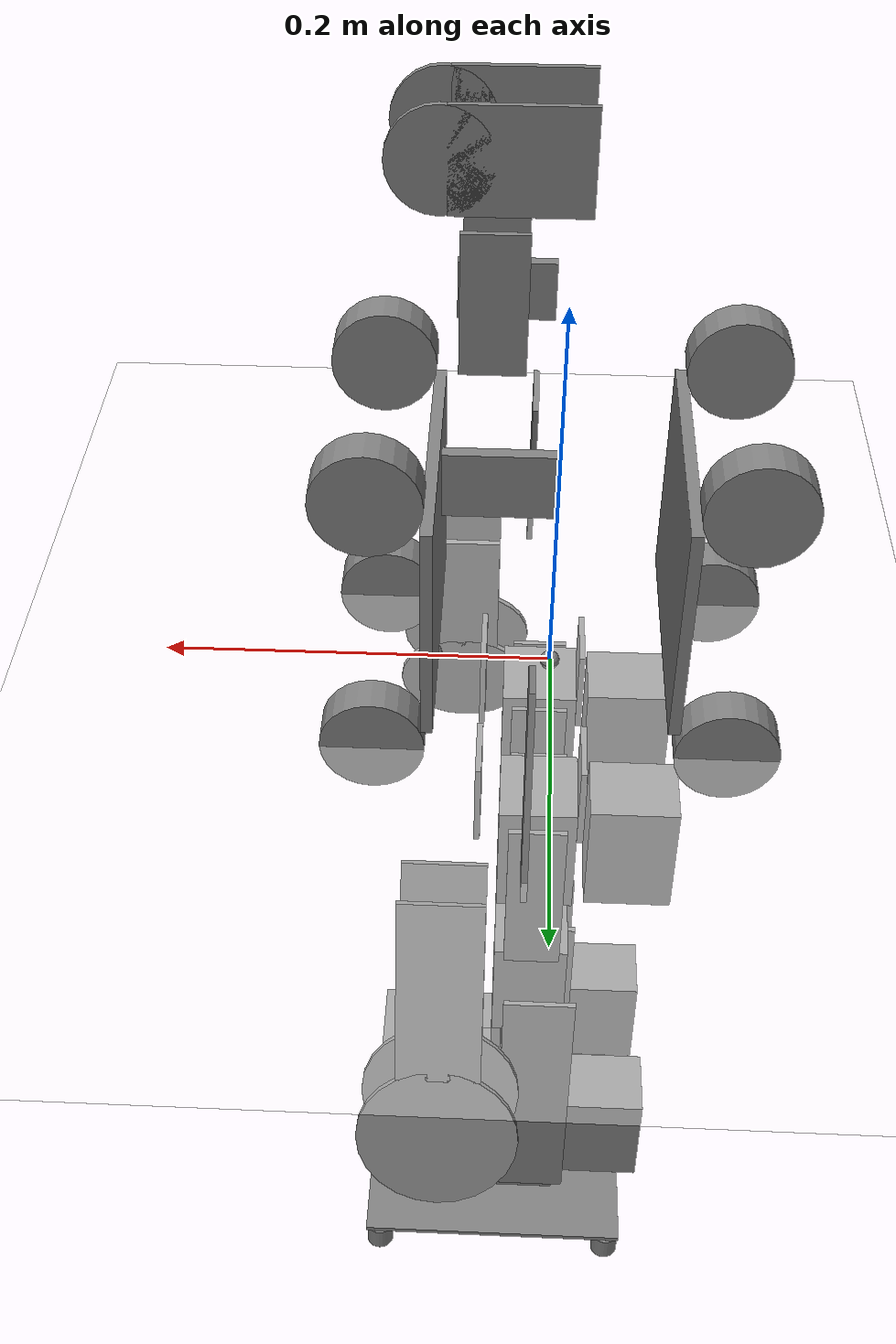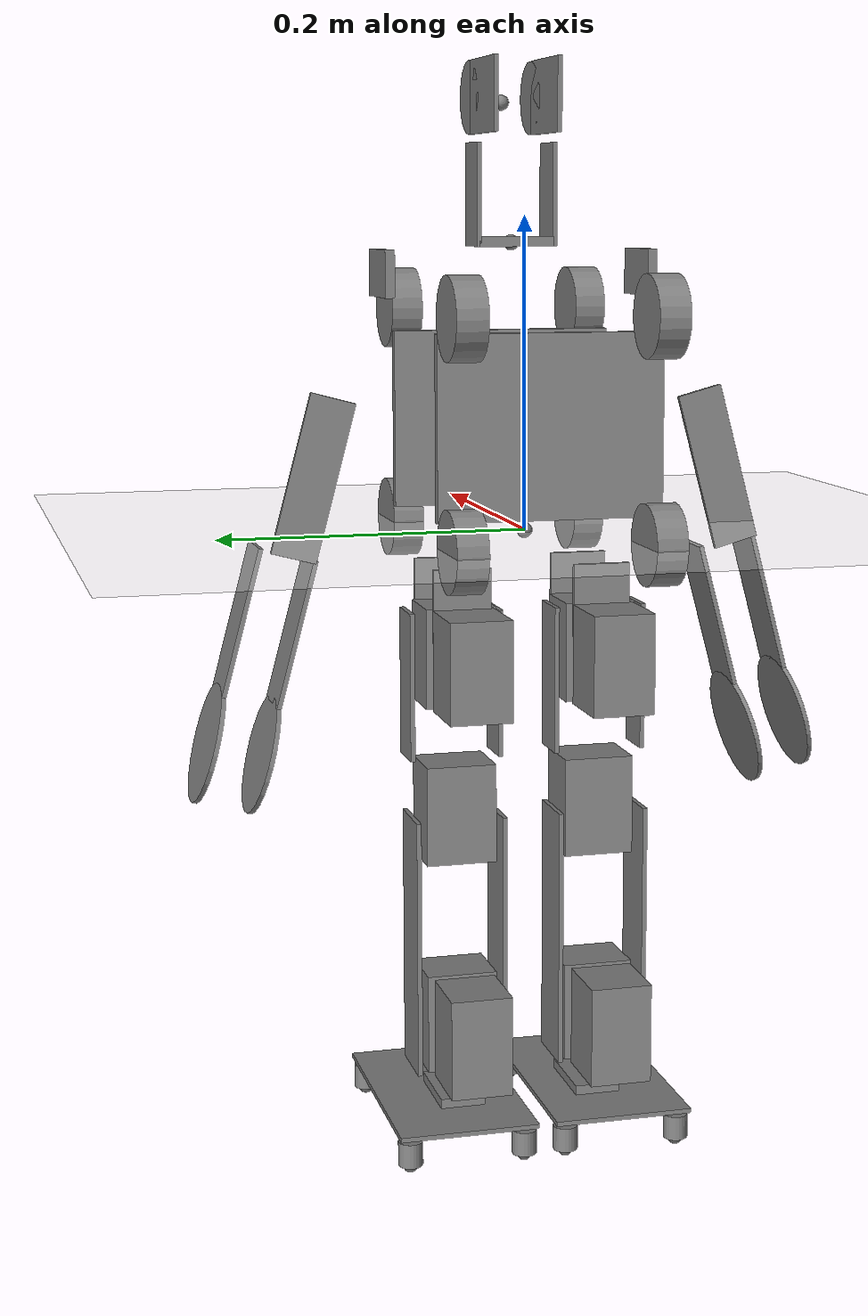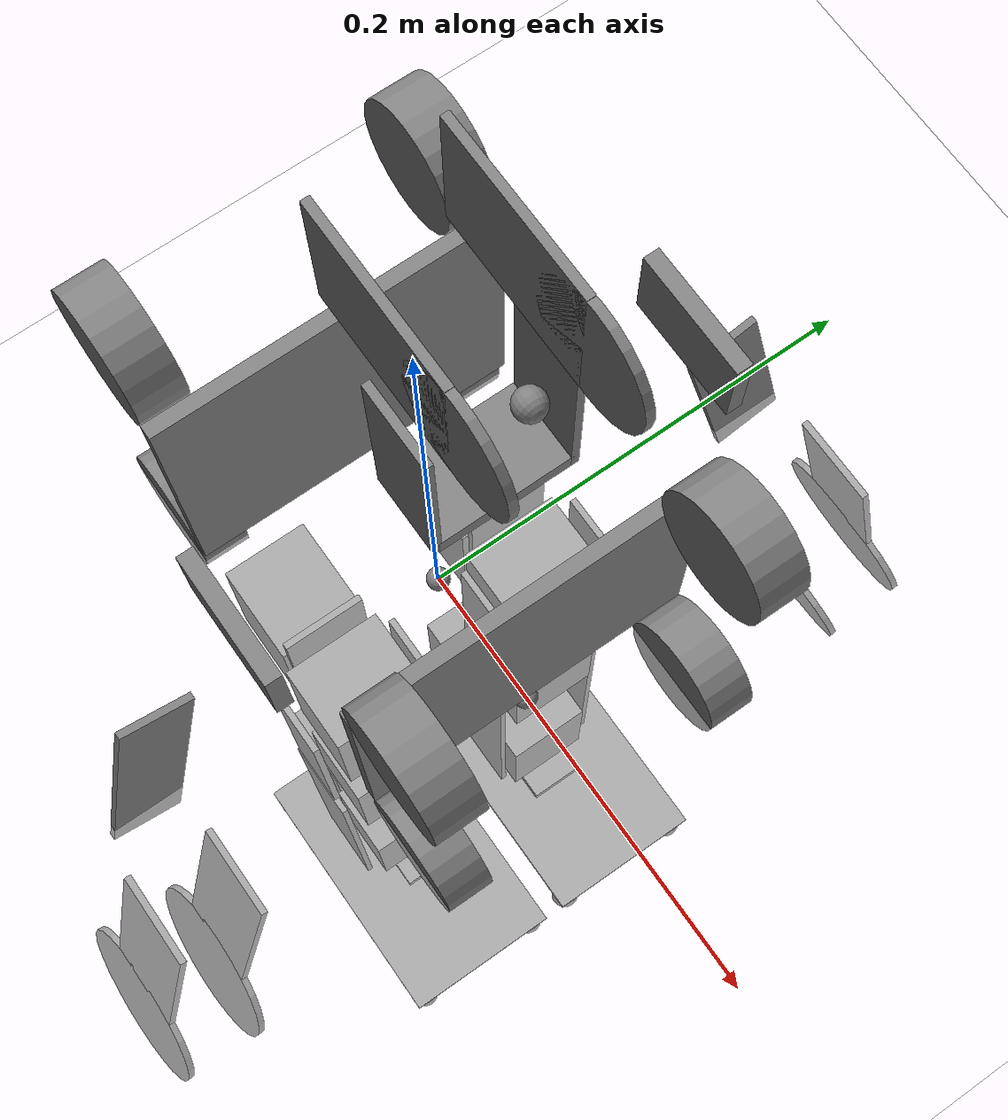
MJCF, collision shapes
<mujoco model="sigmaban humanoid feetonly flat terrain scene">
  <include file="sigmaban.xml"/>

  <statistic center="0 0 0.1" extent="0.8" meansize="0.04"/>

  <visual>
    <headlight diffuse=".8 .8 .8" ambient=".2 .2 .2" specular="1 1 1"/>
    <rgba force="1 0 0 1"/>
    <global azimuth="120" elevation="-20"/>
    <map force="0.01"/>
    <scale forcewidth="0.3" contactwidth="0.5" contactheight="0.2"/>
    <quality shadowsize="8192"/>
  </visual>

  <asset>
    <texture type="skybox" builtin="gradient" rgb1="1 1 1" rgb2="1 1 1" width="800" height="800"/>
    <texture type="2d" name="groundplane" builtin="checker" mark="edge" rgb1="1 1 1" rgb2="1 1 1" markrgb="0 0 0"
      width="300" height="300"/>
    <material name="groundplane" texture="groundplane" texuniform="true" texrepeat="5 5" reflectance="0"/>
  </asset>

  <worldbody>
    <geom name="floor" size="0 0 0.01" type="plane" material="groundplane" contype="1" conaffinity="0" priority="1"
      friction="0.6" condim="3"/>
  </worldbody>

  <keyframe>
    <key name="home"
      qpos="
    0 0 0.515
    1 0 0 0
    -0.071 0.103 -0.463 0.983 -0.350 0.126
    0.071 -0.103 -0.463 0.983 -0.350 -0.126"
      ctrl="
    -0.071 0.103 -0.463 0.983 -0.350 0.126
    0.071 -0.103 -0.463 0.983 -0.350 -0.126"/>
  </keyframe>
</mujoco>
